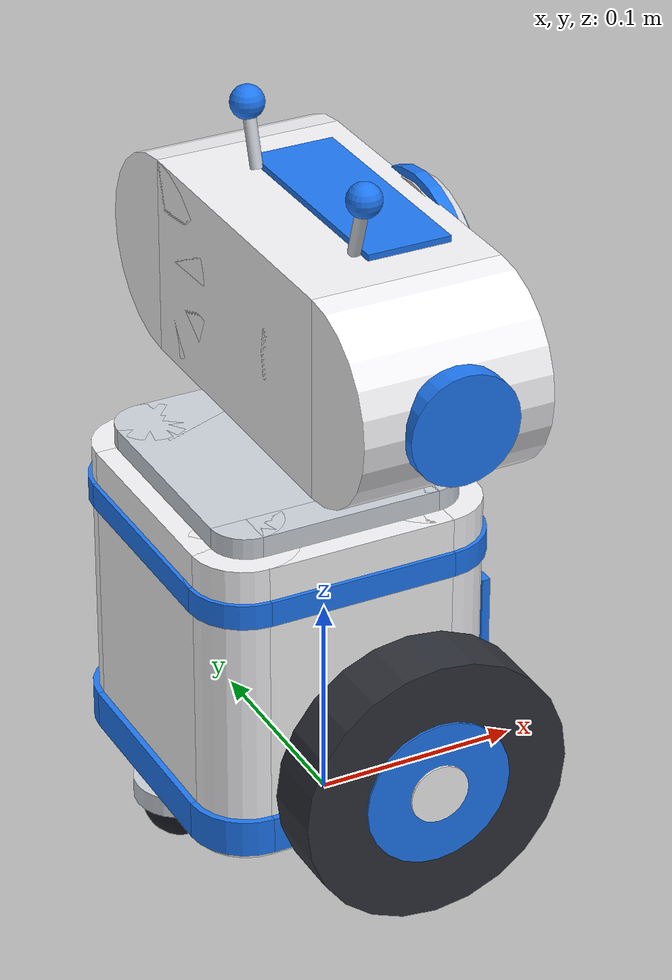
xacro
<?xml version="1.0"?>
<robot name="stereo_eye" xmlns:xacro="http://www.ros.org/wiki/xacro">

  <xacro:arg name="use_gazebo" default="true"/>

  <!-- ===================== PROPERTIES ===================== -->
  <xacro:property name="PI" value="3.14159265358979"/>

  <!-- Wheels -->
  <xacro:property name="wheel_radius"     value="0.065"/>
  <xacro:property name="wheel_width"      value="0.030"/>
  <xacro:property name="wheel_mass"       value="0.25"/>
  <xacro:property name="wheel_separation" value="0.190"/>   <!-- centre-to-centre -->

  <!-- Torso (chunky rounded box). base_link sits on the wheel axle. -->
  <xacro:property name="torso_x"      value="0.140"/>  <!-- depth -->
  <xacro:property name="torso_y"      value="0.150"/>  <!-- width -->
  <xacro:property name="torso_z"      value="0.150"/>  <!-- height -->
  <xacro:property name="torso_r"      value="0.025"/>  <!-- corner radius -->
  <xacro:property name="torso_off_x"  value="-0.020"/>
  <xacro:property name="ground_clear" value="0.030"/>
  <xacro:property name="torso_mass"   value="2.20"/>   <!-- incl. battery, SBC, motors -->
  <!-- torso centre height relative to base_link (axle) -->
  <xacro:property name="torso_cz" value="${ground_clear + torso_z/2 - wheel_radius}"/>
  <xacro:property name="torso_top" value="${torso_cz + torso_z/2}"/>

  <!-- Shoulder cap + neck -->
  <xacro:property name="cap_h"   value="0.010"/>
  <xacro:property name="neck_r"  value="0.022"/>
  <xacro:property name="neck_h"  value="0.020"/>

  <!-- Head: wide flat "pill" bar -->
  <xacro:property name="head_x"     value="0.090"/>   <!-- depth -->
  <xacro:property name="head_core_y" value="0.150"/>  <!-- flat middle part -->
  <xacro:property name="head_z"     value="0.095"/>   <!-- height; ends are cylinders r=head_z/2 -->
  <xacro:property name="head_off_x" value="0.000"/>
  <xacro:property name="head_mass"  value="0.35"/>
  <xacro:property name="head_cz"    value="${torso_top + cap_h + neck_h + head_z/2}"/>

  <!-- Eye / stereo camera -->
  <xacro:property name="eye_z"         value="0.005"/>   <!-- eye centre above head centre -->
  <xacro:property name="bezel_r"       value="0.044"/>
  <xacro:property name="bezel_len"     value="0.012"/>
  <xacro:property name="glass_r"       value="0.039"/>
  <xacro:property name="lens_r"        value="0.0065"/>
  <xacro:property name="stereo_baseline" value="0.063"/>  <!-- ZED-Mini-like -->
  <xacro:property name="cam_w"   value="1280"/>
  <xacro:property name="cam_h"   value="720"/>
  <xacro:property name="cam_fps" value="30"/>
  <xacro:property name="cam_hfov" value="1.6"/>          <!-- rad (~91.7 deg) -->
  <xacro:property name="cam_fx" value="${(cam_w/2.0) / tan(cam_hfov/2.0)}"/>
  <xacro:property name="cam_mass" value="0.06"/>
  <xacro:property name="cam_front_x" value="${head_x/2 + bezel_len - 0.002 + 0.006}"/>

  <!-- Caster ball (rear) -->
  <xacro:property name="caster_r"    value="0.0175"/>
  <xacro:property name="caster_x"    value="-0.075"/>
  <xacro:property name="caster_mass" value="0.05"/>

  <!-- ===================== MATERIALS ===================== -->
  <material name="se_white"><color rgba="0.96 0.96 0.97 1.0"/></material>
  <material name="se_light_grey"><color rgba="0.80 0.82 0.85 1.0"/></material>
  <material name="se_blue"><color rgba="0.12 0.47 0.95 1.0"/></material>
  <material name="se_sky"><color rgba="0.45 0.75 1.00 1.0"/></material>
  <material name="se_dark"><color rgba="0.10 0.11 0.14 1.0"/></material>
  <material name="se_glass"><color rgba="0.03 0.05 0.10 1.0"/></material>
  <material name="se_tire"><color rgba="0.18 0.19 0.22 1.0"/></material>
  <material name="se_blush"><color rgba="1.00 0.55 0.65 1.0"/></material>

  <!-- ===================== INERTIAL MACROS ===================== -->
  <xacro:macro name="box_inertial" params="m x y z *origin">
    <inertial>
      <xacro:insert_block name="origin"/>
      <mass value="${m}"/>
      <inertia ixx="${m*(y*y+z*z)/12.0}" ixy="0" ixz="0"
               iyy="${m*(x*x+z*z)/12.0}" iyz="0"
               izz="${m*(x*x+y*y)/12.0}"/>
    </inertial>
  </xacro:macro>

  <!-- solid cylinder, axis along local z -->
  <xacro:macro name="cylinder_inertial" params="m r h *origin">
    <inertial>
      <xacro:insert_block name="origin"/>
      <mass value="${m}"/>
      <inertia ixx="${m*(3*r*r+h*h)/12.0}" ixy="0" ixz="0"
               iyy="${m*(3*r*r+h*h)/12.0}" iyz="0"
               izz="${m*r*r/2.0}"/>
    </inertial>
  </xacro:macro>

  <xacro:macro name="sphere_inertial" params="m r *origin">
    <inertial>
      <xacro:insert_block name="origin"/>
      <mass value="${m}"/>
      <inertia ixx="${2.0*m*r*r/5.0}" ixy="0" ixz="0"
               iyy="${2.0*m*r*r/5.0}" iyz="0"
               izz="${2.0*m*r*r/5.0}"/>
    </inertial>
  </xacro:macro>

  <!-- ===================== VISUAL HELPER MACROS ===================== -->
  <!-- Box with rounded vertical edges (2 crossed boxes + 4 corner cylinders) -->
  <xacro:macro name="rounded_box_visual" params="name x y z r cx cy cz mat">
    <visual name="${name}_a">
      <origin xyz="${cx} ${cy} ${cz}" rpy="0 0 0"/>
      <geometry><box size="${x - 2*r} ${y} ${z}"/></geometry>
      <material name="${mat}"/>
    </visual>
    <visual name="${name}_b">
      <origin xyz="${cx} ${cy} ${cz}" rpy="0 0 0"/>
      <geometry><box size="${x} ${y - 2*r} ${z}"/></geometry>
      <material name="${mat}"/>
    </visual>
    <xacro:rounded_corner name="${name}_c1" px="${cx + x/2 - r}" py="${cy + y/2 - r}" pz="${cz}" r="${r}" h="${z}" mat="${mat}"/>
    <xacro:rounded_corner name="${name}_c2" px="${cx + x/2 - r}" py="${cy - y/2 + r}" pz="${cz}" r="${r}" h="${z}" mat="${mat}"/>
    <xacro:rounded_corner name="${name}_c3" px="${cx - x/2 + r}" py="${cy + y/2 - r}" pz="${cz}" r="${r}" h="${z}" mat="${mat}"/>
    <xacro:rounded_corner name="${name}_c4" px="${cx - x/2 + r}" py="${cy - y/2 + r}" pz="${cz}" r="${r}" h="${z}" mat="${mat}"/>
  </xacro:macro>

  <xacro:macro name="rounded_corner" params="name px py pz r h mat">
    <visual name="${name}">
      <origin xyz="${px} ${py} ${pz}" rpy="0 0 0"/>
      <geometry><cylinder radius="${r}" length="${h}"/></geometry>
      <material name="${mat}"/>
    </visual>
  </xacro:macro>

  <!-- Disc facing +x (cylinder rotated about y) -->
  <xacro:macro name="front_disc" params="name x y z r t mat">
    <visual name="${name}">
      <origin xyz="${x} ${y} ${z}" rpy="0 ${PI/2} 0"/>
      <geometry><cylinder radius="${r}" length="${t}"/></geometry>
      <material name="${mat}"/>
    </visual>
  </xacro:macro>

  <xacro:macro name="vbox" params="name x y z sx sy sz mat">
    <visual name="${name}">
      <origin xyz="${x} ${y} ${z}" rpy="0 0 0"/>
      <geometry><box size="${sx} ${sy} ${sz}"/></geometry>
      <material name="${mat}"/>
    </visual>
  </xacro:macro>

  <!-- ===================== WHEEL MACRO ===================== -->
  <!-- reflect = +1 for left, -1 for right -->
  <xacro:macro name="drive_wheel" params="prefix reflect">
    <link name="${prefix}_wheel_link">
      <visual name="tire">
        <origin xyz="0 0 0" rpy="0 0 0"/>
        <geometry><cylinder radius="${wheel_radius}" length="${wheel_width}"/></geometry>
        <material name="se_tire"/>
      </visual>
      <visual name="hub">
        <origin xyz="0 0 ${reflect*0.001}" rpy="0 0 0"/>
        <geometry><cylinder radius="${wheel_radius*0.55}" length="${wheel_width}"/></geometry>
        <material name="se_blue"/>
      </visual>
      <visual name="hub_cap">
        <origin xyz="0 0 ${reflect*0.002}" rpy="0 0 0"/>
        <geometry><cylinder radius="${wheel_radius*0.22}" length="${wheel_width}"/></geometry>
        <material name="se_white"/>
      </visual>
      <collision>
        <origin xyz="0 0 0" rpy="0 0 0"/>
        <geometry><cylinder radius="${wheel_radius}" length="${wheel_width}"/></geometry>
      </collision>
      <xacro:cylinder_inertial m="${wheel_mass}" r="${wheel_radius}" h="${wheel_width}">
        <origin xyz="0 0 0" rpy="0 0 0"/>
      </xacro:cylinder_inertial>
    </link>

    <!-- link z-axis = wheel axle; rotate so +z points along +y (left), joint axis z -->
    <joint name="${prefix}_wheel_joint" type="continuous">
      <parent link="base_link"/>
      <child link="${prefix}_wheel_link"/>
      <origin xyz="0 ${reflect*wheel_separation/2} 0" rpy="${-PI/2} 0 0"/>
      <axis xyz="0 0 1"/>
      <limit effort="2.0" velocity="15.0"/>
      <dynamics damping="0.01" friction="0.0"/>
    </joint>

    <gazebo reference="${prefix}_wheel_link">
      <mu1>1.0</mu1>
      <mu2>1.0</mu2>
      <kp>1000000.0</kp>
      <kd>100.0</kd>
      <minDepth>0.001</minDepth>
    </gazebo>
  </xacro:macro>

  <!-- Camera eye link + its REP-103 optical frame -->
  <xacro:macro name="stereo_eye" params="side reflect">
    <link name="camera_${side}_link"/>
    <joint name="camera_${side}_joint" type="fixed">
      <parent link="camera_link"/>
      <child link="camera_${side}_link"/>
      <origin xyz="0 ${reflect*stereo_baseline/2} 0" rpy="0 0 0"/>
    </joint>
    <link name="camera_${side}_optical_frame"/>
    <joint name="camera_${side}_optical_joint" type="fixed">
      <parent link="camera_${side}_link"/>
      <child link="camera_${side}_optical_frame"/>
      <origin xyz="0 0 0" rpy="${-PI/2} 0 ${-PI/2}"/>
    </joint>
  </xacro:macro>

  <!-- ===================== LINKS & JOINTS ===================== -->
  <link name="base_footprint"/>

  <joint name="base_joint" type="fixed">
    <parent link="base_footprint"/>
    <child link="base_link"/>
    <origin xyz="0 0 ${wheel_radius}" rpy="0 0 0"/>
  </joint>

  <link name="base_link">
    <!-- Torso shell (white, rounded) -->
    <xacro:rounded_box_visual name="torso" x="${torso_x}" y="${torso_y}" z="${torso_z}" r="${torso_r}"
                              cx="${torso_off_x}" cy="0" cz="${torso_cz}" mat="se_white"/>
    <!-- Blue bumper band at the bottom -->
    <xacro:rounded_box_visual name="bumper" x="${torso_x + 0.006}" y="${torso_y + 0.006}" z="0.018" r="${torso_r + 0.003}"
                              cx="${torso_off_x}" cy="0" cz="${torso_cz - torso_z/2 + 0.012}" mat="se_blue"/>
    <!-- Blue accent band near the top (the "collar") -->
    <xacro:rounded_box_visual name="collar" x="${torso_x + 0.004}" y="${torso_y + 0.004}" z="0.012" r="${torso_r + 0.002}"
                              cx="${torso_off_x}" cy="0" cz="${torso_top - 0.022}" mat="se_blue"/>
    <!-- Front chest panel (light grey) with vents -->
    <xacro:vbox name="chest_panel" x="${torso_off_x + torso_x/2 + 0.002}" y="0" z="${torso_cz - 0.008}"
                sx="0.004" sy="0.090" sz="0.070" mat="se_light_grey"/>
    <xacro:vbox name="vent_1" x="${torso_off_x + torso_x/2 + 0.0045}" y="0" z="${torso_cz + 0.012}" sx="0.002" sy="0.064" sz="0.006" mat="se_dark"/>
    <xacro:vbox name="vent_2" x="${torso_off_x + torso_x/2 + 0.0045}" y="0" z="${torso_cz - 0.000}" sx="0.002" sy="0.064" sz="0.006" mat="se_dark"/>
    <xacro:vbox name="vent_3" x="${torso_off_x + torso_x/2 + 0.0045}" y="0" z="${torso_cz - 0.012}" sx="0.002" sy="0.064" sz="0.006" mat="se_dark"/>
    <!-- Blue vertical accent stripes either side of the chest panel -->
    <xacro:vbox name="stripe_l" x="${torso_off_x + torso_x/2 + 0.002}" y="0.054" z="${torso_cz - 0.008}" sx="0.004" sy="0.008" sz="0.070" mat="se_blue"/>
    <xacro:vbox name="stripe_r" x="${torso_off_x + torso_x/2 + 0.002}" y="-0.054" z="${torso_cz - 0.008}" sx="0.004" sy="0.008" sz="0.070" mat="se_blue"/>
    <!-- Little heart/status light under the vents -->
    <xacro:front_disc name="status_led" x="${torso_off_x + torso_x/2 + 0.005}" y="0" z="${torso_cz - 0.030}" r="0.007" t="0.003" mat="se_sky"/>
    <!-- Shoulder cap (light grey) and neck -->
    <xacro:rounded_box_visual name="cap" x="${torso_x - 0.020}" y="${torso_y - 0.020}" z="${cap_h}" r="${torso_r - 0.008}"
                              cx="${torso_off_x}" cy="0" cz="${torso_top + cap_h/2}" mat="se_light_grey"/>
    <visual name="neck">
      <origin xyz="${head_off_x} 0 ${torso_top + cap_h + neck_h/2}" rpy="0 0 0"/>
      <geometry><cylinder radius="${neck_r}" length="${neck_h + 0.004}"/></geometry>
      <material name="se_blue"/>
    </visual>
    <!-- Caster housing -->
    <visual name="caster_housing">
      <origin xyz="${caster_x} 0 ${torso_cz - torso_z/2 - 0.004}" rpy="0 0 0"/>
      <geometry><cylinder radius="${caster_r + 0.004}" length="0.010"/></geometry>
      <material name="se_light_grey"/>
    </visual>

    <collision name="torso_collision">
      <origin xyz="${torso_off_x} 0 ${torso_cz}" rpy="0 0 0"/>
      <geometry><box size="${torso_x} ${torso_y} ${torso_z}"/></geometry>
    </collision>

    <!-- Torso mass incl. battery: COM placed low and slightly rearward for caster stability -->
    <xacro:box_inertial m="${torso_mass}" x="${torso_x}" y="${torso_y}" z="${torso_z}">
      <origin xyz="${torso_off_x - 0.010} 0 ${torso_cz - 0.030}" rpy="0 0 0"/>
    </xacro:box_inertial>
  </link>

  <!-- Drive wheels -->
  <xacro:drive_wheel prefix="left"  reflect="1"/>
  <xacro:drive_wheel prefix="right" reflect="-1"/>

  <!-- Rear caster ball -->
  <link name="caster_link">
    <visual>
      <origin xyz="0 0 0" rpy="0 0 0"/>
      <geometry><sphere radius="${caster_r}"/></geometry>
      <material name="se_dark"/>
    </visual>
    <collision>
      <origin xyz="0 0 0" rpy="0 0 0"/>
      <geometry><sphere radius="${caster_r}"/></geometry>
    </collision>
    <xacro:sphere_inertial m="${caster_mass}" r="${caster_r}">
      <origin xyz="0 0 0" rpy="0 0 0"/>
    </xacro:sphere_inertial>
  </link>
  <joint name="caster_joint" type="fixed">
    <parent link="base_link"/>
    <child link="caster_link"/>
    <origin xyz="${caster_x} 0 ${caster_r - wheel_radius}" rpy="0 0 0"/>
  </joint>
  <gazebo reference="caster_link">
    <mu1>0.0</mu1>
    <mu2>0.0</mu2>
    <kp>1000000.0</kp>
    <kd>100.0</kd>
  </gazebo>

  <!-- IMU (centre of the torso, on the axle line) -->
  <link name="imu_link"/>
  <joint name="imu_joint" type="fixed">
    <parent link="base_link"/>
    <child link="imu_link"/>
    <origin xyz="0 0 ${torso_cz - 0.03}" rpy="0 0 0"/>
  </joint>

  <!-- Head: wide flat pill-shaped bar -->
  <link name="head_link">
    <visual name="head_core">
      <origin xyz="0 0 0" rpy="0 0 0"/>
      <geometry><box size="${head_x} ${head_core_y} ${head_z}"/></geometry>
      <material name="se_white"/>
    </visual>
    <visual name="head_end_l">
      <origin xyz="0 ${head_core_y/2} 0" rpy="0 ${PI/2} 0"/>
      <geometry><cylinder radius="${head_z/2}" length="${head_x}"/></geometry>
      <material name="se_white"/>
    </visual>
    <visual name="head_end_r">
      <origin xyz="0 ${-head_core_y/2} 0" rpy="0 ${PI/2} 0"/>
      <geometry><cylinder radius="${head_z/2}" length="${head_x}"/></geometry>
      <material name="se_white"/>
    </visual>
    <!-- blue "ear" lights on the sides -->
    <visual name="ear_l">
      <origin xyz="0 ${head_core_y/2 + head_z/2} 0" rpy="${PI/2} 0 0"/>
      <geometry><cylinder radius="0.026" length="0.010"/></geometry>
      <material name="se_blue"/>
    </visual>
    <visual name="ear_r">
      <origin xyz="0 ${-(head_core_y/2 + head_z/2)} 0" rpy="${PI/2} 0 0"/>
      <geometry><cylinder radius="0.026" length="0.010"/></geometry>
      <material name="se_blue"/>
    </visual>
    <!-- blue brow stripe on the head top -->
    <xacro:vbox name="brow" x="0.012" y="0" z="${head_z/2 + 0.0015}" sx="0.040" sy="0.110" sz="0.003" mat="se_blue"/>
    <!-- big round eye: white bezel ring, blue rim, dark glass, two stereo lenses, sparkle -->
    <xacro:front_disc name="eye_rim"   x="${head_x/2 + 0.002}" y="0" z="${eye_z}" r="${bezel_r + 0.004}" t="0.006" mat="se_blue"/>
    <xacro:front_disc name="eye_bezel" x="${head_x/2 + bezel_len/2 - 0.002}" y="0" z="${eye_z}" r="${bezel_r}" t="${bezel_len}" mat="se_light_grey"/>
    <xacro:front_disc name="eye_glass" x="${head_x/2 + bezel_len - 0.002 + 0.0015}" y="0" z="${eye_z}" r="${glass_r}" t="0.003" mat="se_glass"/>
    <xacro:front_disc name="lens_l" x="${head_x/2 + bezel_len - 0.002 + 0.0035}" y="${stereo_baseline/2}" z="${eye_z}" r="${lens_r}" t="0.003" mat="se_sky"/>
    <xacro:front_disc name="lens_r" x="${head_x/2 + bezel_len - 0.002 + 0.0035}" y="${-stereo_baseline/2}" z="${eye_z}" r="${lens_r}" t="0.003" mat="se_sky"/>
    <visual name="eye_sparkle">
      <origin xyz="${head_x/2 + bezel_len - 0.002 + 0.003} -0.012 ${eye_z + 0.020}" rpy="0 0 0"/>
      <geometry><sphere radius="0.0055"/></geometry>
      <material name="se_white"/>
    </visual>
    <!-- blush cheeks -->
    <xacro:front_disc name="cheek_l" x="${head_x/2 + 0.001}" y="0.060" z="-0.026" r="0.011" t="0.003" mat="se_blush"/>
    <xacro:front_disc name="cheek_r" x="${head_x/2 + 0.001}" y="-0.060" z="-0.026" r="0.011" t="0.003" mat="se_blush"/>
    <!-- twin antennas with blue bobbles -->
    <visual name="antenna_l">
      <origin xyz="-0.010 0.050 ${head_z/2 + 0.013}" rpy="-0.30 0 0"/>
      <geometry><cylinder radius="0.003" length="0.026"/></geometry>
      <material name="se_light_grey"/>
    </visual>
    <visual name="antenna_l_tip">
      <origin xyz="-0.010 ${0.050 + 0.005} ${head_z/2 + 0.029}" rpy="0 0 0"/>
      <geometry><sphere radius="0.008"/></geometry>
      <material name="se_blue"/>
    </visual>
    <visual name="antenna_r">
      <origin xyz="-0.010 -0.050 ${head_z/2 + 0.013}" rpy="0.30 0 0"/>
      <geometry><cylinder radius="0.003" length="0.026"/></geometry>
      <material name="se_light_grey"/>
    </visual>
    <visual name="antenna_r_tip">
      <origin xyz="-0.010 ${-0.050 - 0.005} ${head_z/2 + 0.029}" rpy="0 0 0"/>
      <geometry><sphere radius="0.008"/></geometry>
      <material name="se_blue"/>
    </visual>

    <collision name="head_collision">
      <origin xyz="0 0 0" rpy="0 0 0"/>
      <geometry><box size="${head_x} ${head_core_y + head_z} ${head_z}"/></geometry>
    </collision>
    <xacro:box_inertial m="${head_mass}" x="${head_x}" y="${head_core_y + head_z}" z="${head_z}">
      <origin xyz="0 0 0" rpy="0 0 0"/>
    </xacro:box_inertial>
  </link>
  <joint name="head_joint" type="fixed">
    <parent link="base_link"/>
    <child link="head_link"/>
    <origin xyz="${head_off_x} 0 ${head_cz}" rpy="0 0 0"/>
  </joint>

  <!-- Stereo camera body (centre between the two lenses, at the glass) -->
  <link name="camera_link">
    <xacro:box_inertial m="${cam_mass}" x="0.025" y="0.090" z="0.030">
      <origin xyz="-0.012 0 0" rpy="0 0 0"/>
    </xacro:box_inertial>
  </link>
  <joint name="camera_joint" type="fixed">
    <parent link="head_link"/>
    <child link="camera_link"/>
    <origin xyz="${cam_front_x} 0 ${eye_z}" rpy="0 0 0"/>
  </joint>
  <xacro:stereo_eye side="left"  reflect="1"/>
  <xacro:stereo_eye side="right" reflect="-1"/>

  <!-- ===================== GAZEBO (Harmonic / gz-sim 8) ===================== -->
  <xacro:if value="$(arg use_gazebo)">
    <xacro:include filename="stereo_eye.gazebo.xacro"/>
  </xacro:if>

</robot>
